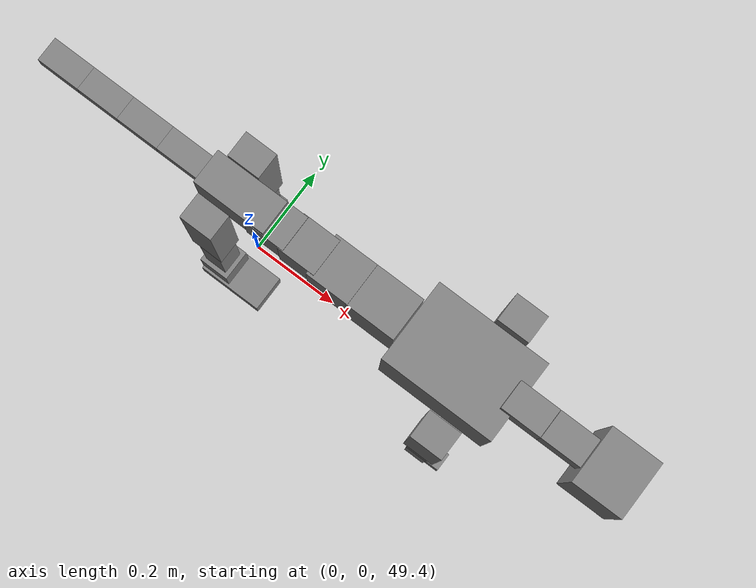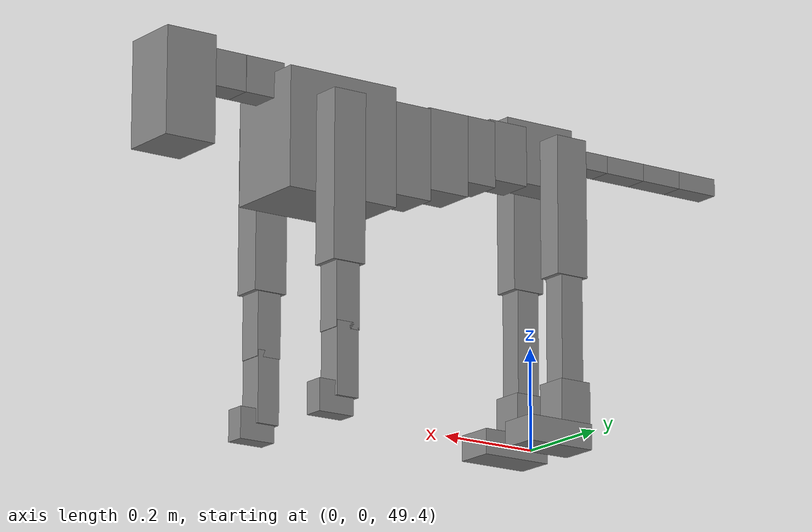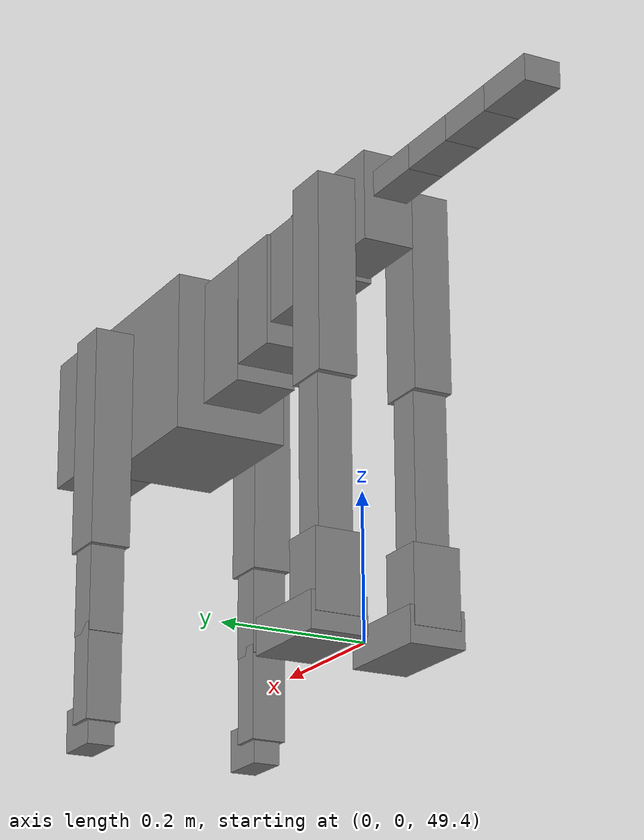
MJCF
<mujoco model="dog">

    <default>
        <joint armature="0.02" stiffness="1" damping="0.2" limited="true"/>
        <geom condim="3" friction="1 0.05 0.05" margin="0.01"/>
        <motor ctrllimited="true" ctrlrange="-1.0 1.0" forcelimited="true" gear="50"/>
    </default>

    <compiler inertiafromgeom="true" angle="radian"/>

    <option timestep="0.016" iterations="50" tolerance="1e-10" solver="Newton" jacobian="dense" cone="pyramidal"/>

    <size nconmax="20000" njmax="60000" nstack="5000000"/>
    <visual>
        <map force="0.1" zfar="30"/>
        <rgba haze="0.15 0.25 0.35 1"/>
        <quality shadowsize="2048"/>
        <global offwidth="800" offheight="800"/>
    </visual>

    <asset>
        <texture type="skybox" builtin="gradient" rgb1="0.3 0.5 0.7" rgb2="0 0 0" width="512" height="512"/>
        <texture name="texplane" type="2d" builtin="checker" rgb1=".2 .3 .4" rgb2=".1 0.15 0.2" width="512" height="512"
                 mark="cross" markrgb=".8 .8 .8"/>
        <texture name="texgeom" type="cube" builtin="flat" mark="cross" width="127" height="1278" rgb1="0.8 0.6 0.4"
                 rgb2="0.8 0.6 0.4" markrgb="1 1 1" random="0.01"/>

        <material name="matplane" reflectance="0.3" texture="texplane" texrepeat="1 1" texuniform="true"/>
        <material name="matgeom" texture="texgeom" texuniform="true" rgba="0.8 0.6 .4 1"/>
    </asset>

    <worldbody>
        <geom name="floor" pos="0 0 0" size="0 0 .25" type="plane" material="matplane" condim="3"/>

        <light directional="false" diffuse=".2 .2 .2" specular="0 0 0" pos="0 0 5" dir="0 0 -1" castshadow="false"/>
        <light mode="targetbodycom" target="torso" directional="false" diffuse=".8 .8 .8" specular="0.3 0.3 0.3"
               pos="0 0 4.0" dir="0 0 -1"/>

        <body name="root" pos="0 0 50">
            <freejoint name="root_1"/>
            <geom type="box" pos="0 0 -0.02" size="0.0774  0.0358  0.063" density="2030"/>

            <body name="spine1" pos="0.054 0 0">
                <joint name="spine1_y" axis="0 1 0" range="0 0.7" limited="true"/>
                <geom type="box" pos="0.02375 0 -0.03" size="0.04375  0.0375  0.05985" density="2030"/>

                <body name="spine2" pos="0.0612 0 0">
                    <joint name="spine2_y" axis="0 1 0" range="-0.15 0.15" limited="true"/>
                    <geom type="box" pos="0.03555  0  -0.04" size="0.04055  0.039  0.06615" density="2030"/>

                    <body name="spine3" pos="0.0730 0 0">
                        <joint name="spine3_y" axis="0 1 0" range="-0.15 0.15" limited="true"/>
                        <geom type="box" pos="0.03555  0  -0.057" size="0.04555  0.0445  0.081" density="2030"/>

                        <body name="spine4" pos="0.0780 0 0">
                            <joint name="spine4_y" axis="0 1 0" range="-0.15 0.15" limited="true"/>
                            <geom type="box" pos="0.05265  0  -0.07" size="0.05265  0.045  0.09135" density="2030"/>

                            <body name="torso" pos="0.1082 0 0">
                                <joint name="torso_y" axis="0 1 0" range="-0.15 0.15" limited="true"/>
                                <geom type="box" pos="0.11925  0  -0.085" size="0.11925  0.085  0.11745"
                                      density="2030"/>

                                <body name="neck1" pos="0.2160  0   0.0180">
                                    <joint name="neck1_y" axis="0 1 0" range="-1.2  -1" limited="true"/>
                                    <geom type="box" pos="0.0423  0  0" size="0.0423  0.03  0.036" density="2325"/>

                                    <body name="neck2" pos="0.0853  0  0">
                                        <joint name="neck2_y" axis="0 1 0" range="0.1  0" limited="true"/>
                                        <geom type="box" pos="0.0423  0  0" size="0.0423  0.03  0.036" density="2325"/>

                                        <body name="head" pos="0.0853  0  0">
                                            <joint name="head_y" axis="0 1 0" range="-0.3  -0.2" limited="true"/>
                                            <geom type="box" pos="0.0531  0  -0.055" size="0.0531  0.06  0.1044"
                                                  density="4030"/>

                                        </body>
                                    </body>
                                </body>

                                <body name="front_shoulder" pos="0.156  0   -0.0480">
                                    <joint name="front_shoulder_y" axis="0 1 0" range="-1 1.5" limited="true"/>
                                    <geom type="box" pos="0 0.13 -0.1375" size="0.0348  0.0298  0.1641" density="1158"/>
                                    <geom type="box" pos="0 -0.13 -0.1375" size="0.0348  0.0298  0.1641"
                                          density="1158"/>

                                    <body name="front_elbow" pos="0  0  -0.2749">
                                        <joint name="front_elbow_y" axis="0 1 0" range="-2 0" limited="true"/>
                                        <geom type="box" pos="0 0.13 -0.0763" size="0.0254  0.0260  0.0763"
                                              density="1081"/>
                                        <geom type="box" pos="0 -0.13 -0.0763" size="0.0254  0.0260  0.0763"
                                              density="1081"/>

                                        <body name="front_wrist" pos="0  0  -0.1527">
                                            <joint name="front_wrist_y" axis="0 1 0" range="-0.2 0" limited="true"/>
                                            <geom type="box" pos="0 0.13 -0.0573" size="0.0234  0.0260  0.0704"
                                                  density="1664"/>
                                            <geom type="box" pos="0 -0.13 -0.0573" size="0.0234  0.0260  0.0704"
                                                  density="1664"/>

                                            <body name="front_finger_end" pos="0  0  -0.1145">
                                                <joint name="front_finger_y" axis="0 1 0" range="-0.4 1"
                                                       limited="true"/>
                                                <geom type="box" pos="0.0203  0.13  -0.0158"
                                                      size="0.0372  0.0203  0.0308" density="1515"/>
                                                <geom type="box" pos="0.0203  -0.13  -0.0158"
                                                      size="0.0372  0.0203  0.0308" density="1515"/>

                                            </body>

                                        </body>
                                    </body>
                                </body>

                            </body>
                        </body>
                    </body>
                </body>
            </body>

            <body name="back_hip" pos="-0.03 0 -0.018">
                <joint name="back_hip_y" axis="0 1 0" range="-1.5 0.3" limited="true"/>
                <geom type="box" pos="0 0.07 -0.1153" size="0.0349  0.0274  0.1381" density="1154"/>
                <geom type="box" pos="0 -0.07 -0.1153" size="0.0349  0.0274  0.1381" density="1154"/>

                <body name="back_knee" pos="0  0  -0.2307">
                    <joint name="back_knee_y" axis="0 1 0" range="0 2.8" limited="true"/>
                    <geom type="box" pos="0 0.07 -0.1208" size="0.0247  0.0244  0.1364" density="1227"/>
                    <geom type="box" pos="0 -0.07 -0.1208" size="0.0247  0.0244  0.1364" density="1227"/>

                    <body name="back_ankle" pos="0  0  -0.2417">
                        <joint name="back_ankle_y" axis="0 1 0" range="-2.2 0" limited="true"/>
                        <geom type="box" pos="0 0.07 -0.0430" size="0.0338  0.0338  0.0542" density="1284"/>
                        <geom type="box" pos="0 -0.07 -0.0430" size="0.0338  0.0338  0.0542" density="1284"/>

                        <body name="back_toe_end" pos="0  0  -0.0859">
                            <joint name="back_toe_y" axis="0 1 0" range="-0.4 1" limited="true"/>
                            <geom type="box" pos="0.0397  0.07  -0.0101" size="0.0727  0.0397  0.0251" density="1515"/>
                            <geom type="box" pos="0.0397  -0.07  -0.0101" size="0.0727  0.0397  0.0251" density="1515"/>

                        </body>
                    </body>
                </body>
            </body>

            <body name="tail1" pos="-0.074 0 -0.006">
                <joint name="tail1_y" axis="0 1 0" range="-0.2 0.2" limited="true"/>
                <geom type="box" pos="-0.0536  0  0" size="0.045  0.025  0.0175" density="1587"/>

                <body name="tail2" pos="-0.09 0 0">
                    <joint name="tail2_y" axis="0 1 0" range="-0.2 0.2" limited="true"/>
                    <geom type="box" pos="-0.0536  0  0" size="0.045  0.025  0.0175" density="1587"/>

                    <body name="tail3" pos="-0.09 0 0">
                        <joint name="tail3_y" axis="0 1 0" range="-0.2 0.2" limited="true"/>
                        <geom type="box" pos="-0.0536  0  0" size="0.045  0.025  0.0175" density="1587"/>

                        <body name="tail4" pos="-0.09 0 0">
                            <joint name="tail4_y" axis="0 1 0" range="-0.2 0.2" limited="true"/>
                            <geom type="box" pos="-0.0536  0  0" size="0.045  0.025  0.0175" density="1587"/>

                        </body>
                    </body>
                </body>
            </body>
        </body>
    </worldbody>

    <actuator>
        <motor joint="spine1_y" forcerange="-150 150     "/>
        <motor joint="spine2_y" forcerange="-150 150     "/>
        <motor joint="spine3_y" forcerange="-150 150     "/>
        <motor joint="spine4_y" forcerange="-150 150     "/>
        <motor joint="torso_y" forcerange="-150 150     "/>
        <motor joint="neck1_y" forcerange="-100 100       "/>
        <motor joint="neck2_y" forcerange="-100 100       "/>
        <motor joint="head_y" forcerange="-150 150       "/>
        <motor joint="front_shoulder_y" forcerange="-186.78 111.57"/>
        <motor joint="front_elbow_y" forcerange="-170.21 118.62"/>
        <motor joint="front_wrist_y" forcerange="-134.69 73.44"/>
        <motor joint="front_finger_y" forcerange="-20.29 47.91"/>
        <motor joint="back_hip_y" forcerange="-256.60 308.63"/>
        <motor joint="back_knee_y" forcerange="-318.55 235.71"/>
        <motor joint="back_angle_y" forcerange="-222.90 217.39"/>
        <motor joint="back_toe_y" forcerange="-114.21 123.23"/>
        <motor joint="tail1_y" forcerange="-50 50     "/>
        <motor joint="tail2_y" forcerange="-50 50     "/>
        <motor joint="tail3_y" forcerange="-50 50     "/>
        <motor joint="tail4_y" forcerange="-50 50     "/>
    </actuator>
</mujoco>
